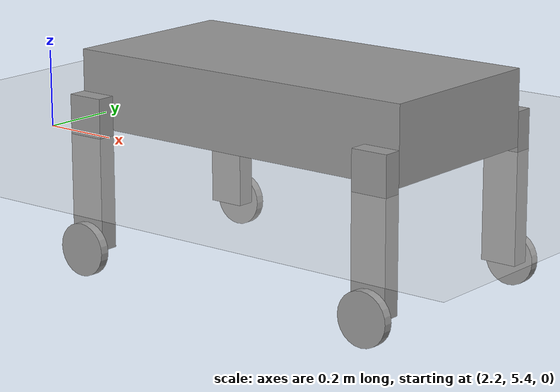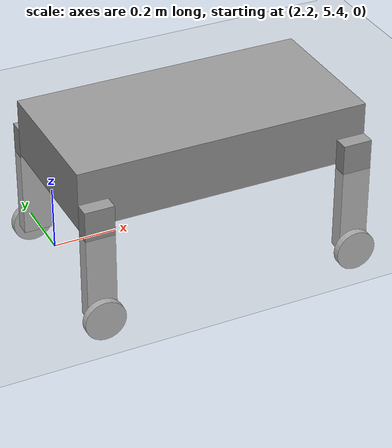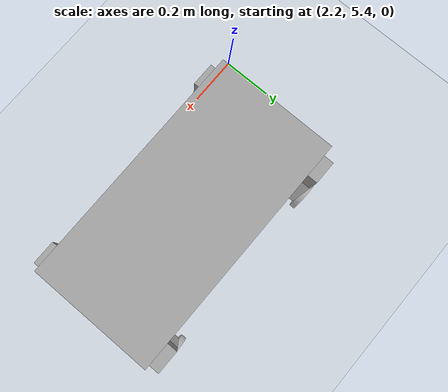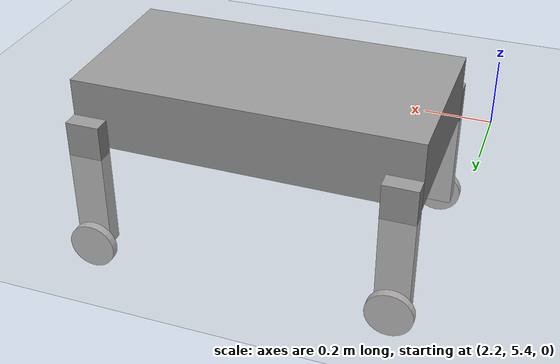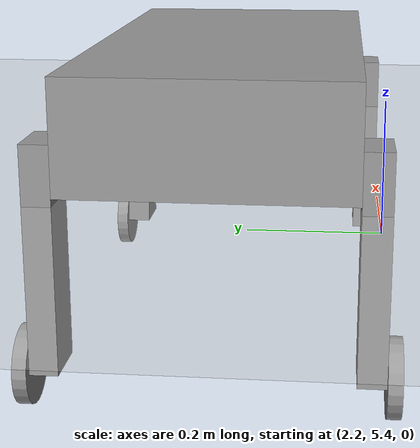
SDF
<sdf version="1.6">
 <world name="default">
  <model name="ground_plane">
   <static>1</static>
   <link name="link">
    <collision name="collision">
     <geometry><plane><normal>0 0 1</normal><size>1000 1000</size></plane></geometry>
     <surface>
      <contact><collide_bitmask>65535</collide_bitmask></contact>
      <friction><ode><mu>100</mu><mu2>50</mu2></ode></friction>
     </surface>
    </collision>
    <visual name="visual">
     <cast_shadows>0</cast_shadows>
     <geometry><plane><normal>0 0 1</normal><size>1000 1000</size></plane></geometry>
     <material>
      <script><uri>file://media/materials/scripts/gazebo.material</uri><name>Gazebo/Grey</name></script>
     </material>
    </visual>
   </link>
  </model>
  <model name="mybot">
   <link name="link_0">
    <pose>-1e-06 2e-06 0.2754 0 -0 0</pose>
    <inertial>
     <mass>1</mass>
     <inertia>
      <ixx>0.166667</ixx>
      <ixy>0</ixy>
      <ixz>0</ixz>
      <iyy>0.166667</iyy>
      <iyz>0</iyz>
      <izz>0.166667</izz>
     </inertia>
    </inertial>
    <visual name="visual">
     <geometry><box><size>1 0.5 0.2</size></box></geometry>
     <material>
      <lighting>1</lighting>
      <script><uri>file://media/materials/scripts/gazebo.material</uri><name>Gazebo/Grey</name></script>
      <shader type="pixel"><normal_map>__default__</normal_map></shader>
      <ambient>0.3 0.3 0.3 1</ambient>
      <diffuse>0.7 0.7 0.7 1</diffuse>
      <specular>0.01 0.01 0.01 1</specular>
      <emissive>0 0 0 1</emissive>
     </material>
    </visual>
    <collision name="collision">
     <geometry><box><size>1 0.5 0.2</size></box></geometry>
     <surface>
      <friction>
       <ode><mu>1</mu><mu2>1</mu2><fdir1>0 0 0</fdir1><slip1>0</slip1><slip2>0</slip2></ode>
       <torsional>
        <coefficient>1</coefficient>
        <patch_radius>0</patch_radius>
        <surface_radius>0</surface_radius>
        <use_patch_radius>1</use_patch_radius>
        <ode><slip>0</slip></ode>
       </torsional>
      </friction>
      <bounce><restitution_coefficient>0</restitution_coefficient><threshold>1e+06</threshold></bounce>
      <contact>
       <collide_without_contact>0</collide_without_contact>
       <collide_without_contact_bitmask>1</collide_without_contact_bitmask>
       <collide_bitmask>1</collide_bitmask>
       <ode>
        <soft_cfm>0</soft_cfm>
        <soft_erp>0.2</soft_erp>
        <kp>1e+13</kp>
        <kd>1</kd>
        <max_vel>0.01</max_vel>
        <min_depth>0</min_depth>
       </ode>
       <bullet>
        <split_impulse>1</split_impulse>
        <split_impulse_penetration_threshold>-0.01</split_impulse_penetration_threshold>
        <soft_cfm>0</soft_cfm>
        <soft_erp>0.2</soft_erp>
        <kp>1e+13</kp>
        <kd>1</kd>
       </bullet>
      </contact>
     </surface>
    </collision>
   </link>
   <link name="link_1_clone">
    <pose>-0.449999 -0.274998 0.065575 0 -0 0</pose>
    <inertial>
     <mass>1</mass>
     <inertia>
      <ixx>0.166667</ixx>
      <ixy>0</ixy>
      <ixz>0</ixz>
      <iyy>0.166667</iyy>
      <iyz>0</iyz>
      <izz>0.166667</izz>
     </inertia>
    </inertial>
    <visual name="visual">
     <geometry><box><size>0.1 0.05 0.4</size></box></geometry>
     <material>
      <lighting>1</lighting>
      <script><uri>file://media/materials/scripts/gazebo.material</uri><name>Gazebo/Grey</name></script>
      <shader type="pixel"><normal_map>__default__</normal_map></shader>
      <ambient>0.3 0.3 0.3 1</ambient>
      <diffuse>0.7 0.7 0.7 1</diffuse>
      <specular>0.01 0.01 0.01 1</specular>
      <emissive>0 0 0 1</emissive>
     </material>
    </visual>
    <collision name="collision">
     <geometry><box><size>0.1 0.05 0.4</size></box></geometry>
     <surface>
      <friction>
       <ode><mu>1</mu><mu2>1</mu2><fdir1>0 0 0</fdir1><slip1>0</slip1><slip2>0</slip2></ode>
       <torsional>
        <coefficient>1</coefficient>
        <patch_radius>0</patch_radius>
        <surface_radius>0</surface_radius>
        <use_patch_radius>1</use_patch_radius>
        <ode><slip>0</slip></ode>
       </torsional>
      </friction>
      <bounce><restitution_coefficient>0</restitution_coefficient><threshold>1e+06</threshold></bounce>
      <contact>
       <collide_without_contact>0</collide_without_contact>
       <collide_without_contact_bitmask>1</collide_without_contact_bitmask>
       <collide_bitmask>1</collide_bitmask>
       <ode>
        <soft_cfm>0</soft_cfm>
        <soft_erp>0.2</soft_erp>
        <kp>1e+13</kp>
        <kd>1</kd>
        <max_vel>0.01</max_vel>
        <min_depth>0</min_depth>
       </ode>
       <bullet>
        <split_impulse>1</split_impulse>
        <split_impulse_penetration_threshold>-0.01</split_impulse_penetration_threshold>
        <soft_cfm>0</soft_cfm>
        <soft_erp>0.2</soft_erp>
        <kp>1e+13</kp>
        <kd>1</kd>
       </bullet>
      </contact>
     </surface>
    </collision>
   </link>
   <link name="link_1_clone_clone">
    <pose>0.45 -0.274998 0.065575 0 -0 0</pose>
    <inertial>
     <mass>1</mass>
     <inertia>
      <ixx>0.166667</ixx>
      <ixy>0</ixy>
      <ixz>0</ixz>
      <iyy>0.166667</iyy>
      <iyz>0</iyz>
      <izz>0.166667</izz>
     </inertia>
    </inertial>
    <visual name="visual">
     <geometry><box><size>0.1 0.05 0.4</size></box></geometry>
     <material>
      <lighting>1</lighting>
      <script><uri>file://media/materials/scripts/gazebo.material</uri><name>Gazebo/Grey</name></script>
      <shader type="pixel"><normal_map>__default__</normal_map></shader>
      <ambient>0.3 0.3 0.3 1</ambient>
      <diffuse>0.7 0.7 0.7 1</diffuse>
      <specular>0.01 0.01 0.01 1</specular>
      <emissive>0 0 0 1</emissive>
     </material>
    </visual>
    <collision name="collision">
     <geometry><box><size>0.1 0.05 0.4</size></box></geometry>
     <surface>
      <friction>
       <ode><mu>1</mu><mu2>1</mu2><fdir1>0 0 0</fdir1><slip1>0</slip1><slip2>0</slip2></ode>
       <torsional>
        <coefficient>1</coefficient>
        <patch_radius>0</patch_radius>
        <surface_radius>0</surface_radius>
        <use_patch_radius>1</use_patch_radius>
        <ode><slip>0</slip></ode>
       </torsional>
      </friction>
      <bounce><restitution_coefficient>0</restitution_coefficient><threshold>1e+06</threshold></bounce>
      <contact>
       <collide_without_contact>0</collide_without_contact>
       <collide_without_contact_bitmask>1</collide_without_contact_bitmask>
       <collide_bitmask>1</collide_bitmask>
       <ode>
        <soft_cfm>0</soft_cfm>
        <soft_erp>0.2</soft_erp>
        <kp>1e+13</kp>
        <kd>1</kd>
        <max_vel>0.01</max_vel>
        <min_depth>0</min_depth>
       </ode>
       <bullet>
        <split_impulse>1</split_impulse>
        <split_impulse_penetration_threshold>-0.01</split_impulse_penetration_threshold>
        <soft_cfm>0</soft_cfm>
        <soft_erp>0.2</soft_erp>
        <kp>1e+13</kp>
        <kd>1</kd>
       </bullet>
      </contact>
     </surface>
    </collision>
   </link>
   <link name="link_1_clone_clone_clone">
    <pose>-0.450001 0.275002 0.065575 0 -0 0</pose>
    <inertial>
     <mass>1</mass>
     <inertia>
      <ixx>0.166667</ixx>
      <ixy>0</ixy>
      <ixz>0</ixz>
      <iyy>0.166667</iyy>
      <iyz>0</iyz>
      <izz>0.166667</izz>
     </inertia>
    </inertial>
    <visual name="visual">
     <geometry><box><size>0.1 0.05 0.4</size></box></geometry>
     <material>
      <lighting>1</lighting>
      <script><uri>file://media/materials/scripts/gazebo.material</uri><name>Gazebo/Grey</name></script>
      <shader type="pixel"><normal_map>__default__</normal_map></shader>
      <ambient>0.3 0.3 0.3 1</ambient>
      <diffuse>0.7 0.7 0.7 1</diffuse>
      <specular>0.01 0.01 0.01 1</specular>
      <emissive>0 0 0 1</emissive>
     </material>
    </visual>
    <collision name="collision">
     <geometry><box><size>0.1 0.05 0.4</size></box></geometry>
     <surface>
      <friction>
       <ode><mu>1</mu><mu2>1</mu2><fdir1>0 0 0</fdir1><slip1>0</slip1><slip2>0</slip2></ode>
       <torsional>
        <coefficient>1</coefficient>
        <patch_radius>0</patch_radius>
        <surface_radius>0</surface_radius>
        <use_patch_radius>1</use_patch_radius>
        <ode><slip>0</slip></ode>
       </torsional>
      </friction>
      <bounce><restitution_coefficient>0</restitution_coefficient><threshold>1e+06</threshold></bounce>
      <contact>
       <collide_without_contact>0</collide_without_contact>
       <collide_without_contact_bitmask>1</collide_without_contact_bitmask>
       <collide_bitmask>1</collide_bitmask>
       <ode>
        <soft_cfm>0</soft_cfm>
        <soft_erp>0.2</soft_erp>
        <kp>1e+13</kp>
        <kd>1</kd>
        <max_vel>0.01</max_vel>
        <min_depth>0</min_depth>
       </ode>
       <bullet>
        <split_impulse>1</split_impulse>
        <split_impulse_penetration_threshold>-0.01</split_impulse_penetration_threshold>
        <soft_cfm>0</soft_cfm>
        <soft_erp>0.2</soft_erp>
        <kp>1e+13</kp>
        <kd>1</kd>
       </bullet>
      </contact>
     </surface>
    </collision>
   </link>
   <link name="link_1_clone_clone_clone_clone">
    <pose>0.45 0.275002 0.065575 0 -0 0</pose>
    <inertial>
     <mass>1</mass>
     <inertia>
      <ixx>0.166667</ixx>
      <ixy>0</ixy>
      <ixz>0</ixz>
      <iyy>0.166667</iyy>
      <iyz>0</iyz>
      <izz>0.166667</izz>
     </inertia>
    </inertial>
    <visual name="visual">
     <geometry><box><size>0.1 0.05 0.4</size></box></geometry>
     <material>
      <lighting>1</lighting>
      <script><uri>file://media/materials/scripts/gazebo.material</uri><name>Gazebo/Grey</name></script>
      <shader type="pixel"><normal_map>__default__</normal_map></shader>
      <ambient>0.3 0.3 0.3 1</ambient>
      <diffuse>0.7 0.7 0.7 1</diffuse>
      <specular>0.01 0.01 0.01 1</specular>
      <emissive>0 0 0 1</emissive>
     </material>
    </visual>
    <collision name="collision">
     <geometry><box><size>0.1 0.05 0.4</size></box></geometry>
     <surface>
      <friction>
       <ode><mu>1</mu><mu2>1</mu2><fdir1>0 0 0</fdir1><slip1>0</slip1><slip2>0</slip2></ode>
       <torsional>
        <coefficient>1</coefficient>
        <patch_radius>0</patch_radius>
        <surface_radius>0</surface_radius>
        <use_patch_radius>1</use_patch_radius>
        <ode><slip>0</slip></ode>
       </torsional>
      </friction>
      <bounce><restitution_coefficient>0</restitution_coefficient><threshold>1e+06</threshold></bounce>
      <contact>
       <collide_without_contact>0</collide_without_contact>
       <collide_without_contact_bitmask>1</collide_without_contact_bitmask>
       <collide_bitmask>1</collide_bitmask>
       <ode>
        <soft_cfm>0</soft_cfm>
        <soft_erp>0.2</soft_erp>
        <kp>1e+13</kp>
        <kd>1</kd>
        <max_vel>0.01</max_vel>
        <min_depth>0</min_depth>
       </ode>
       <bullet>
        <split_impulse>1</split_impulse>
        <split_impulse_penetration_threshold>-0.01</split_impulse_penetration_threshold>
        <soft_cfm>0</soft_cfm>
        <soft_erp>0.2</soft_erp>
        <kp>1e+13</kp>
        <kd>1</kd>
       </bullet>
      </contact>
     </surface>
    </collision>
   </link>
   <link name="link_3_clone">
    <pose>0.45 0.312542 -0.134425 1.57 -0 0</pose>
    <inertial>
     <mass>1</mass>
     <inertia><ixx>0.145833</ixx><ixy>0</ixy><ixz>0</ixz><iyy>0.145833</iyy><iyz>0</iyz><izz>0.125</izz></inertia>
    </inertial>
    <visual name="visual">
     <geometry><cylinder><radius>0.07</radius><length>0.025</length></cylinder></geometry>
     <material>
      <lighting>1</lighting>
      <script><uri>file://media/materials/scripts/gazebo.material</uri><name>Gazebo/Grey</name></script>
      <shader type="pixel"><normal_map>__default__</normal_map></shader>
      <ambient>0.3 0.3 0.3 1</ambient>
      <diffuse>0.7 0.7 0.7 1</diffuse>
      <specular>0.01 0.01 0.01 1</specular>
      <emissive>0 0 0 1</emissive>
     </material>
    </visual>
    <collision name="collision">
     <geometry><cylinder><radius>0.07</radius><length>0.025</length></cylinder></geometry>
     <surface>
      <friction>
       <ode><mu>1</mu><mu2>1</mu2><fdir1>0 0 0</fdir1><slip1>0</slip1><slip2>0</slip2></ode>
       <torsional>
        <coefficient>1</coefficient>
        <patch_radius>0</patch_radius>
        <surface_radius>0</surface_radius>
        <use_patch_radius>1</use_patch_radius>
        <ode><slip>0</slip></ode>
       </torsional>
      </friction>
      <bounce><restitution_coefficient>0</restitution_coefficient><threshold>1e+06</threshold></bounce>
      <contact>
       <collide_without_contact>0</collide_without_contact>
       <collide_without_contact_bitmask>1</collide_without_contact_bitmask>
       <collide_bitmask>1</collide_bitmask>
       <ode>
        <soft_cfm>0</soft_cfm>
        <soft_erp>0.2</soft_erp>
        <kp>1e+13</kp>
        <kd>1</kd>
        <max_vel>0.01</max_vel>
        <min_depth>0</min_depth>
       </ode>
       <bullet>
        <split_impulse>1</split_impulse>
        <split_impulse_penetration_threshold>-0.01</split_impulse_penetration_threshold>
        <soft_cfm>0</soft_cfm>
        <soft_erp>0.2</soft_erp>
        <kp>1e+13</kp>
        <kd>1</kd>
       </bullet>
      </contact>
     </surface>
    </collision>
   </link>
   <link name="link_3_clone_clone">
    <pose>-0.450001 0.312558 -0.134425 1.57 -0 0</pose>
    <inertial>
     <mass>1</mass>
     <inertia><ixx>0.145833</ixx><ixy>0</ixy><ixz>0</ixz><iyy>0.145833</iyy><iyz>0</iyz><izz>0.125</izz></inertia>
    </inertial>
    <visual name="visual">
     <geometry><cylinder><radius>0.07</radius><length>0.025</length></cylinder></geometry>
     <material>
      <lighting>1</lighting>
      <script><uri>file://media/materials/scripts/gazebo.material</uri><name>Gazebo/Grey</name></script>
      <shader type="pixel"><normal_map>__default__</normal_map></shader>
      <ambient>0.3 0.3 0.3 1</ambient>
      <diffuse>0.7 0.7 0.7 1</diffuse>
      <specular>0.01 0.01 0.01 1</specular>
      <emissive>0 0 0 1</emissive>
     </material>
    </visual>
    <collision name="collision">
     <geometry><cylinder><radius>0.07</radius><length>0.025</length></cylinder></geometry>
     <surface>
      <friction>
       <ode><mu>1</mu><mu2>1</mu2><fdir1>0 0 0</fdir1><slip1>0</slip1><slip2>0</slip2></ode>
       <torsional>
        <coefficient>1</coefficient>
        <patch_radius>0</patch_radius>
        <surface_radius>0</surface_radius>
        <use_patch_radius>1</use_patch_radius>
        <ode><slip>0</slip></ode>
       </torsional>
      </friction>
      <bounce><restitution_coefficient>0</restitution_coefficient><threshold>1e+06</threshold></bounce>
      <contact>
       <collide_without_contact>0</collide_without_contact>
       <collide_without_contact_bitmask>1</collide_without_contact_bitmask>
       <collide_bitmask>1</collide_bitmask>
       <ode>
        <soft_cfm>0</soft_cfm>
        <soft_erp>0.2</soft_erp>
        <kp>1e+13</kp>
        <kd>1</kd>
        <max_vel>0.01</max_vel>
        <min_depth>0</min_depth>
       </ode>
       <bullet>
        <split_impulse>1</split_impulse>
        <split_impulse_penetration_threshold>-0.01</split_impulse_penetration_threshold>
        <soft_cfm>0</soft_cfm>
        <soft_erp>0.2</soft_erp>
        <kp>1e+13</kp>
        <kd>1</kd>
       </bullet>
      </contact>
     </surface>
    </collision>
   </link>
   <link name="link_3_clone_clone_0">
    <pose>0.45 -0.312554 -0.134425 1.57 -0 0</pose>
    <inertial>
     <mass>1</mass>
     <inertia><ixx>0.145833</ixx><ixy>0</ixy><ixz>0</ixz><iyy>0.145833</iyy><iyz>0</iyz><izz>0.125</izz></inertia>
    </inertial>
    <visual name="visual">
     <geometry><cylinder><radius>0.07</radius><length>0.025</length></cylinder></geometry>
     <material>
      <lighting>1</lighting>
      <script><uri>file://media/materials/scripts/gazebo.material</uri><name>Gazebo/Grey</name></script>
      <shader type="pixel"><normal_map>__default__</normal_map></shader>
      <ambient>0.3 0.3 0.3 1</ambient>
      <diffuse>0.7 0.7 0.7 1</diffuse>
      <specular>0.01 0.01 0.01 1</specular>
      <emissive>0 0 0 1</emissive>
     </material>
    </visual>
    <collision name="collision">
     <geometry><cylinder><radius>0.07</radius><length>0.025</length></cylinder></geometry>
     <surface>
      <friction>
       <ode><mu>1</mu><mu2>1</mu2><fdir1>0 0 0</fdir1><slip1>0</slip1><slip2>0</slip2></ode>
       <torsional>
        <coefficient>1</coefficient>
        <patch_radius>0</patch_radius>
        <surface_radius>0</surface_radius>
        <use_patch_radius>1</use_patch_radius>
        <ode><slip>0</slip></ode>
       </torsional>
      </friction>
      <bounce><restitution_coefficient>0</restitution_coefficient><threshold>1e+06</threshold></bounce>
      <contact>
       <collide_without_contact>0</collide_without_contact>
       <collide_without_contact_bitmask>1</collide_without_contact_bitmask>
       <collide_bitmask>1</collide_bitmask>
       <ode>
        <soft_cfm>0</soft_cfm>
        <soft_erp>0.2</soft_erp>
        <kp>1e+13</kp>
        <kd>1</kd>
        <max_vel>0.01</max_vel>
        <min_depth>0</min_depth>
       </ode>
       <bullet>
        <split_impulse>1</split_impulse>
        <split_impulse_penetration_threshold>-0.01</split_impulse_penetration_threshold>
        <soft_cfm>0</soft_cfm>
        <soft_erp>0.2</soft_erp>
        <kp>1e+13</kp>
        <kd>1</kd>
       </bullet>
      </contact>
     </surface>
    </collision>
   </link>
   <link name="link_3_clone_clone_0_clone">
    <pose>-0.449999 -0.312553 -0.134425 1.57 -0 0</pose>
    <inertial>
     <mass>1</mass>
     <inertia><ixx>0.145833</ixx><ixy>0</ixy><ixz>0</ixz><iyy>0.145833</iyy><iyz>0</iyz><izz>0.125</izz></inertia>
    </inertial>
    <visual name="visual">
     <geometry><cylinder><radius>0.07</radius><length>0.025</length></cylinder></geometry>
     <material>
      <lighting>1</lighting>
      <script><uri>file://media/materials/scripts/gazebo.material</uri><name>Gazebo/Grey</name></script>
      <shader type="pixel"><normal_map>__default__</normal_map></shader>
      <ambient>0.3 0.3 0.3 1</ambient>
      <diffuse>0.7 0.7 0.7 1</diffuse>
      <specular>0.01 0.01 0.01 1</specular>
      <emissive>0 0 0 1</emissive>
     </material>
    </visual>
    <collision name="collision">
     <geometry><cylinder><radius>0.07</radius><length>0.025</length></cylinder></geometry>
     <surface>
      <friction>
       <ode><mu>1</mu><mu2>1</mu2><fdir1>0 0 0</fdir1><slip1>0</slip1><slip2>0</slip2></ode>
       <torsional>
        <coefficient>1</coefficient>
        <patch_radius>0</patch_radius>
        <surface_radius>0</surface_radius>
        <use_patch_radius>1</use_patch_radius>
        <ode><slip>0</slip></ode>
       </torsional>
      </friction>
      <bounce><restitution_coefficient>0</restitution_coefficient><threshold>1e+06</threshold></bounce>
      <contact>
       <collide_without_contact>0</collide_without_contact>
       <collide_without_contact_bitmask>1</collide_without_contact_bitmask>
       <collide_bitmask>1</collide_bitmask>
       <ode>
        <soft_cfm>0</soft_cfm>
        <soft_erp>0.2</soft_erp>
        <kp>1e+13</kp>
        <kd>1</kd>
        <max_vel>0.01</max_vel>
        <min_depth>0</min_depth>
       </ode>
       <bullet>
        <split_impulse>1</split_impulse>
        <split_impulse_penetration_threshold>-0.01</split_impulse_penetration_threshold>
        <soft_cfm>0</soft_cfm>
        <soft_erp>0.2</soft_erp>
        <kp>1e+13</kp>
        <kd>1</kd>
       </bullet>
      </contact>
     </surface>
    </collision>
   </link>
   <joint name="link_0_JOINT_1" type="revolute">
    <parent>link_0</parent>
    <child>link_1_clone</child>
    <pose>0 0 0.15 0 -0 0</pose>
    <axis>
     <xyz>0 1 0</xyz>
     <use_parent_model_frame>0</use_parent_model_frame>
     <limit>
      <lower>-1.79769e+308</lower>
      <upper>1.79769e+308</upper>
      <effort>-1</effort>
      <velocity>-1</velocity>
     </limit>
     <dynamics>
      <spring_reference>0</spring_reference>
      <spring_stiffness>0</spring_stiffness>
      <damping>0</damping>
      <friction>0</friction>
     </dynamics>
    </axis>
    <physics>
     <ode><limit><cfm>0</cfm><erp>0.2</erp></limit><suspension><cfm>0</cfm><erp>0.2</erp></suspension></ode>
    </physics>
   </joint>
   <joint name="link_0_JOINT_3" type="revolute">
    <parent>link_0</parent>
    <child>link_1_clone_clone</child>
    <pose>0 0 0.15 0 -0 0</pose>
    <axis>
     <xyz>0 1 0</xyz>
     <use_parent_model_frame>0</use_parent_model_frame>
     <limit>
      <lower>-1.79769e+308</lower>
      <upper>1.79769e+308</upper>
      <effort>-1</effort>
      <velocity>-1</velocity>
     </limit>
     <dynamics>
      <spring_reference>0</spring_reference>
      <spring_stiffness>0</spring_stiffness>
      <damping>0</damping>
     </dynamics>
    </axis>
    <physics>
     <ode><limit><cfm>0</cfm><erp>0.2</erp></limit><suspension><cfm>0</cfm><erp>0.2</erp></suspension></ode>
    </physics>
   </joint>
   <joint name="link_0_JOINT_4" type="revolute">
    <parent>link_0</parent>
    <child>link_1_clone_clone_clone</child>
    <pose>0 0 0.15 0 -0 0</pose>
    <axis>
     <xyz>0 -1 0</xyz>
     <use_parent_model_frame>0</use_parent_model_frame>
     <limit>
      <lower>-1.79769e+308</lower>
      <upper>1.79769e+308</upper>
      <effort>-1</effort>
      <velocity>-1</velocity>
     </limit>
     <dynamics>
      <spring_reference>0</spring_reference>
      <spring_stiffness>0</spring_stiffness>
      <damping>0</damping>
     </dynamics>
    </axis>
    <physics>
     <ode><limit><cfm>0</cfm><erp>0.2</erp></limit><suspension><cfm>0</cfm><erp>0.2</erp></suspension></ode>
    </physics>
   </joint>
   <joint name="link_0_JOINT_5" type="revolute">
    <parent>link_0</parent>
    <child>link_1_clone_clone_clone_clone</child>
    <pose>0 0 0.15 0 -0 0</pose>
    <axis>
     <xyz>0 -1 0</xyz>
     <use_parent_model_frame>0</use_parent_model_frame>
     <limit>
      <lower>-1.79769e+308</lower>
      <upper>1.79769e+308</upper>
      <effort>-1</effort>
      <velocity>-1</velocity>
     </limit>
     <dynamics>
      <spring_reference>0</spring_reference>
      <spring_stiffness>0</spring_stiffness>
      <damping>0</damping>
     </dynamics>
    </axis>
    <physics>
     <ode><limit><cfm>0</cfm><erp>0.2</erp></limit><suspension><cfm>0</cfm><erp>0.2</erp></suspension></ode>
    </physics>
   </joint>
   <joint name="link_1_clone_JOINT_9" type="revolute">
    <parent>link_1_clone</parent>
    <child>link_3_clone_clone_0_clone</child>
    <axis>
     <xyz>0 0 -1</xyz>
     <use_parent_model_frame>0</use_parent_model_frame>
     <limit>
      <lower>-1.79769e+308</lower>
      <upper>1.79769e+308</upper>
      <effort>-1</effort>
      <velocity>-1</velocity>
     </limit>
     <dynamics>
      <spring_reference>0</spring_reference>
      <spring_stiffness>0</spring_stiffness>
      <damping>0</damping>
     </dynamics>
    </axis>
    <physics>
     <ode><limit><cfm>0</cfm><erp>0.2</erp></limit><suspension><cfm>0</cfm><erp>0.2</erp></suspension></ode>
    </physics>
   </joint>
   <joint name="link_1_clone_clone_JOINT_8" type="revolute">
    <parent>link_1_clone_clone</parent>
    <child>link_3_clone_clone_0</child>
    <axis>
     <xyz>0 0 -1</xyz>
     <use_parent_model_frame>0</use_parent_model_frame>
     <limit>
      <lower>-1.79769e+308</lower>
      <upper>1.79769e+308</upper>
      <effort>-1</effort>
      <velocity>-1</velocity>
     </limit>
     <dynamics>
      <spring_reference>0</spring_reference>
      <spring_stiffness>0</spring_stiffness>
      <damping>0</damping>
     </dynamics>
    </axis>
    <physics>
     <ode><limit><cfm>0</cfm><erp>0.2</erp></limit><suspension><cfm>0</cfm><erp>0.2</erp></suspension></ode>
    </physics>
   </joint>
   <joint name="link_1_clone_clone_clone_JOINT_7" type="revolute">
    <parent>link_1_clone_clone_clone</parent>
    <child>link_3_clone_clone</child>
    <axis>
     <xyz>0 0 1</xyz>
     <use_parent_model_frame>0</use_parent_model_frame>
     <limit>
      <lower>-1.79769e+308</lower>
      <upper>1.79769e+308</upper>
      <effort>-1</effort>
      <velocity>-1</velocity>
     </limit>
     <dynamics>
      <spring_reference>0</spring_reference>
      <spring_stiffness>0</spring_stiffness>
      <damping>0</damping>
     </dynamics>
    </axis>
    <physics>
     <ode><limit><cfm>0</cfm><erp>0.2</erp></limit><suspension><cfm>0</cfm><erp>0.2</erp></suspension></ode>
    </physics>
   </joint>
   <joint name="link_1_clone_clone_clone_clone_JOINT_6" type="revolute">
    <parent>link_1_clone_clone_clone_clone</parent>
    <child>link_3_clone</child>
    <axis>
     <xyz>0 0 1</xyz>
     <use_parent_model_frame>0</use_parent_model_frame>
     <limit>
      <lower>-1.79769e+308</lower>
      <upper>1.79769e+308</upper>
      <effort>-1</effort>
      <velocity>-1</velocity>
     </limit>
     <dynamics>
      <spring_reference>0</spring_reference>
      <spring_stiffness>0</spring_stiffness>
      <damping>0</damping>
      <friction>0</friction>
     </dynamics>
    </axis>
    <physics>
     <ode><limit><cfm>0</cfm><erp>0.2</erp></limit><suspension><cfm>0</cfm><erp>0.2</erp></suspension></ode>
    </physics>
   </joint>
   <static>0</static>
   <pose>2.79125 5.67574 -0.163131 -4e-06 0 -0.001661</pose>
  </model>
 </world>
</sdf>
